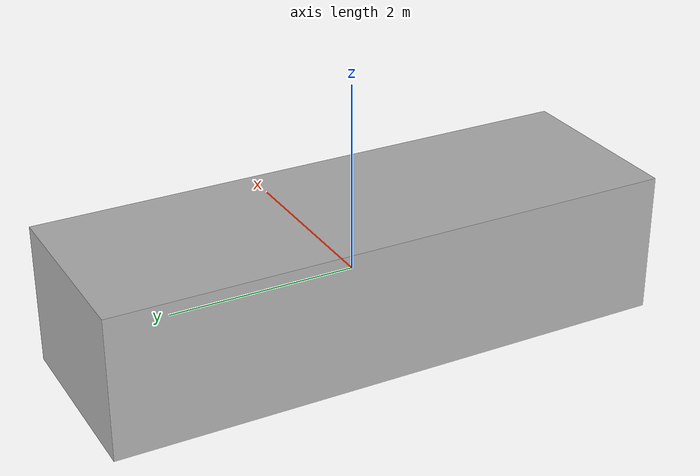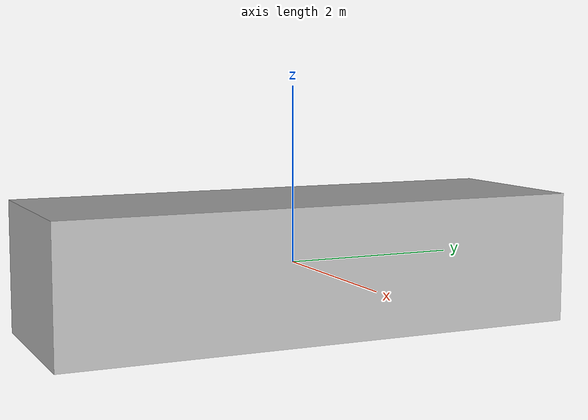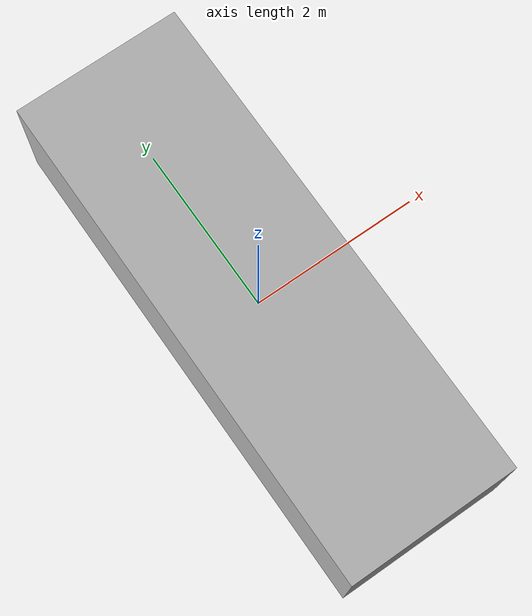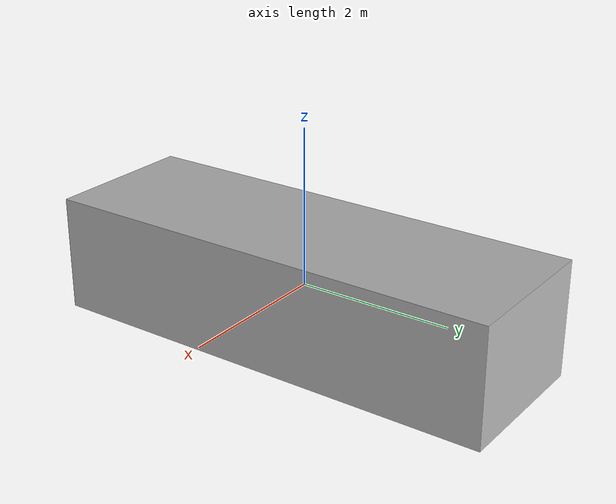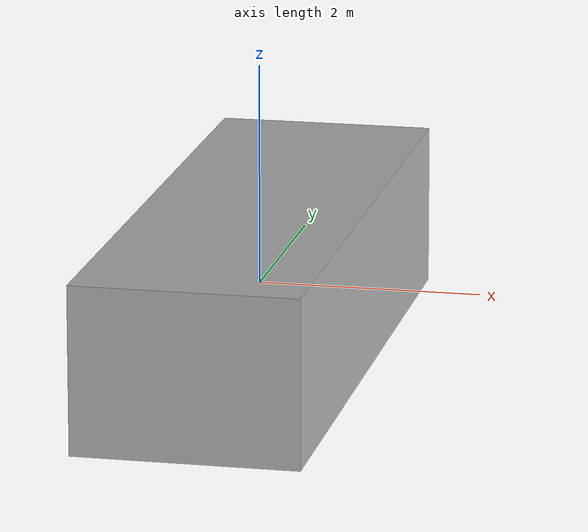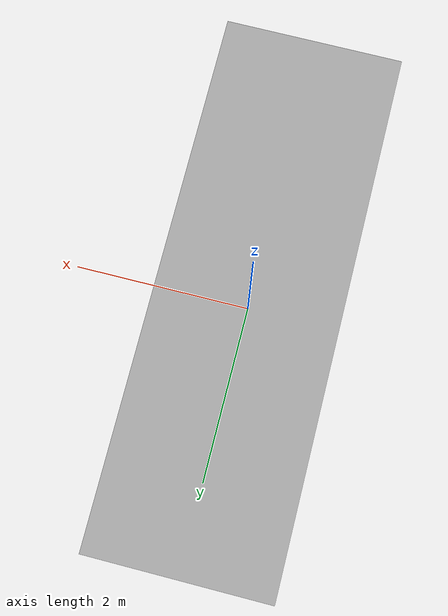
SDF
<?xml version='1.0' encoding='utf-8'?>
<sdf version='1.10'>
<model name='box2x6'>
  <link name='box_link'>
    <collision name='box_collision'>
      <geometry>
        <box>
          <size>2 6 1.5</size>
        </box>
      </geometry>
      <surface>
        <friction>
          <ode/>
        </friction>
        <bounce/>
        <contact/>
      </surface>
    </collision>
    <visual name='visual'>
      <geometry>
        <box>
          <size>0.1 0.1 0.1</size>
        </box>
      </geometry>
      <material>
        <ambient>0.175 0.175 0.175  1.0</ambient> <!-- dark grey -->
        <diffuse>0.175 0.175 0.175  1.0</diffuse>
        <specular>1 1 1 1</specular>
      </material>
    </visual>
    <visual name='image'>
      <pose>0 0 0 0 0 0</pose>
        <geometry>
          <box>
            <size>2 6 1.5</size>
          </box>
        </geometry>
        <material>
        <diffuse>0.7 0.7 0.7 1</diffuse>
        <specular>1 1 1 1</specular>
        <pbr>
            <metal>
              <albedo_map>materials/textures/diff.jpg</albedo_map>   <!--Takeoff base image-->
              <metalness> 0 </metalness>
              <roughness>1</roughness>
            </metal>
		      </pbr>
      </material>
      </visual>
    <pose>0 0 0 0 0 0</pose>
    <enable_wind>false</enable_wind>
  </link>
  <static>true</static>
  <self_collide>false</self_collide>
</model>
</sdf>
